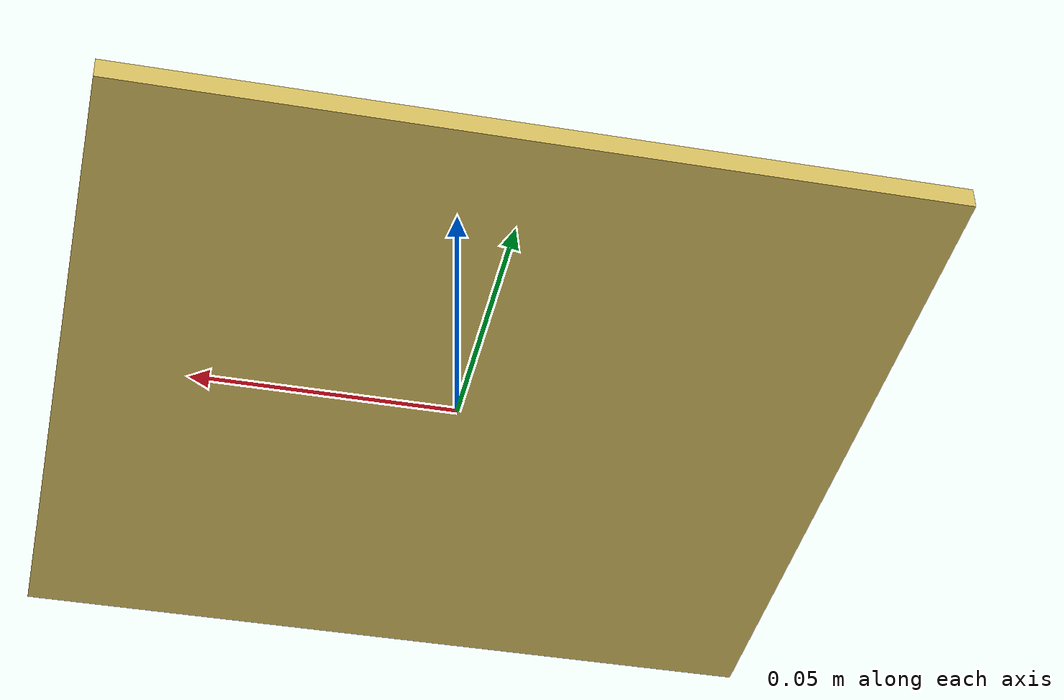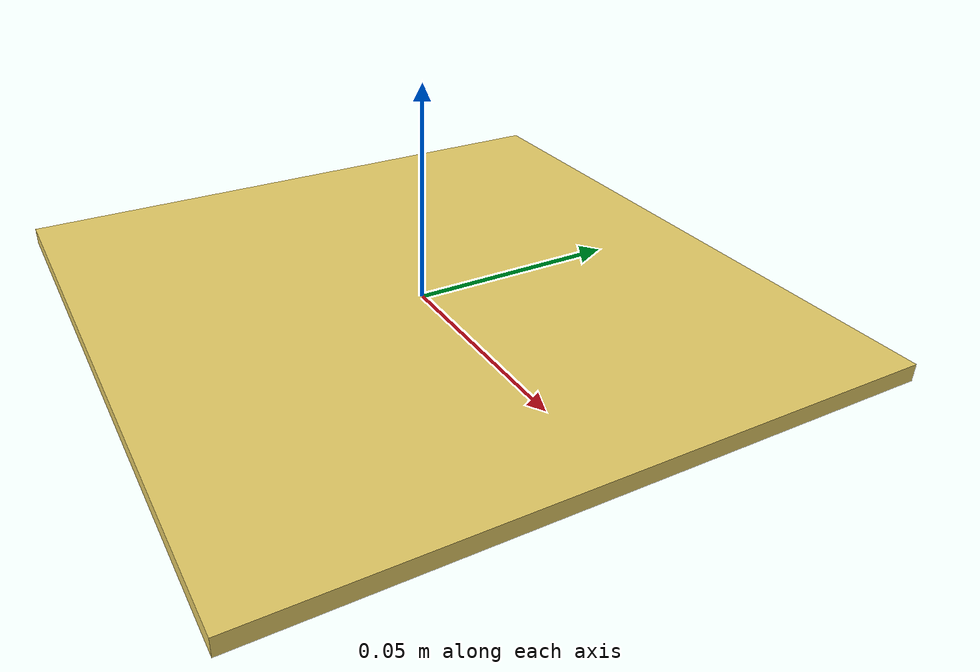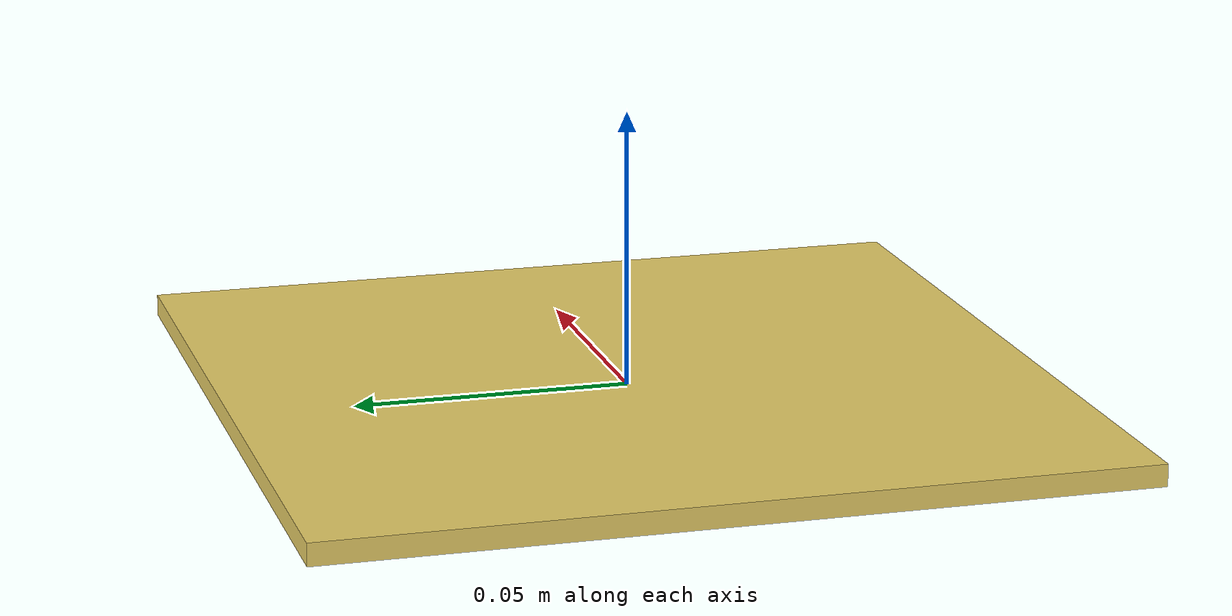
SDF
<?xml version="1.0"?>
<sdf version="1.6">
  <model name="pouch">
    <link name="link">
      <inertial>
        <mass>0.012</mass>
        <inertia>
          <ixx>2.1e-5</ixx><iyy>2.2e-5</iyy><izz>4.3e-5</izz>
          <ixy>0</ixy><ixz>0</ixz><iyz>0</iyz>
        </inertia>
      </inertial>
      <collision name="col">
        <geometry>
          <box><size>0.148 0.146 0.004</size></box>
        </geometry>
        <surface>
          <friction><ode><mu>1.2</mu><mu2>1.2</mu2></ode></friction>
          <contact><ode><kp>1e6</kp><kd>50</kd></ode></contact>
        </surface>
      </collision>
      <visual name="vis">
        <geometry>
          <box><size>0.148 0.146 0.004</size></box>
        </geometry>
        <material>
          <ambient>0.85 0.75 0.35 1</ambient>
          <diffuse>0.90 0.80 0.40 1</diffuse>
        </material>
      </visual>
    </link>
  </model>
</sdf>
